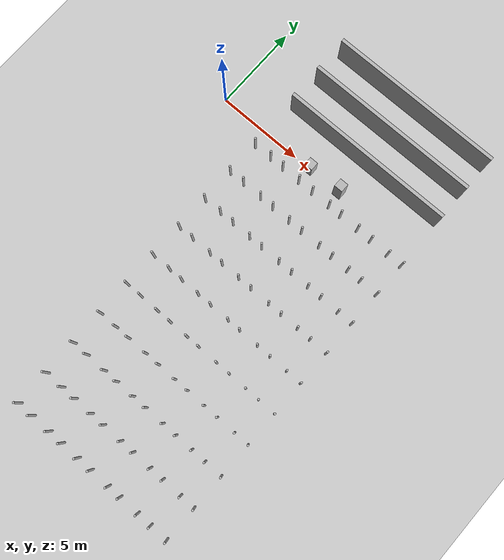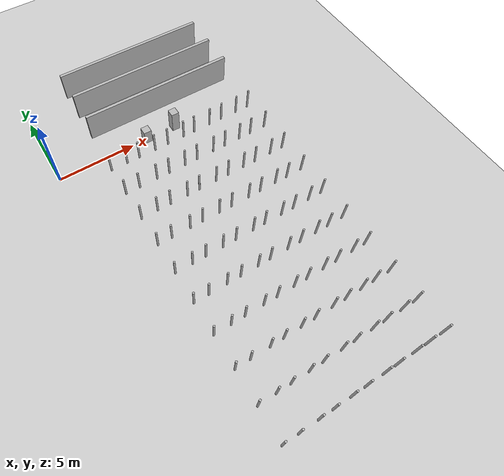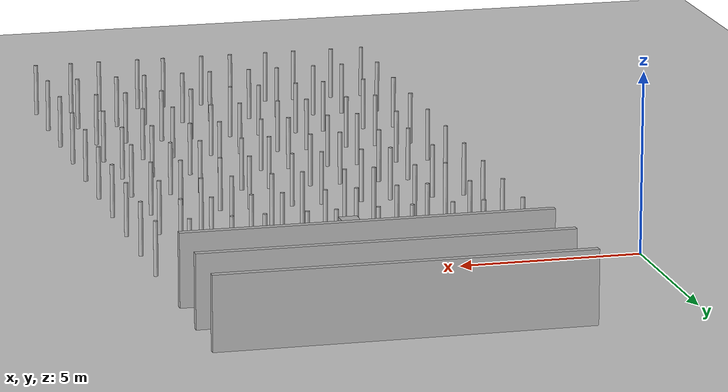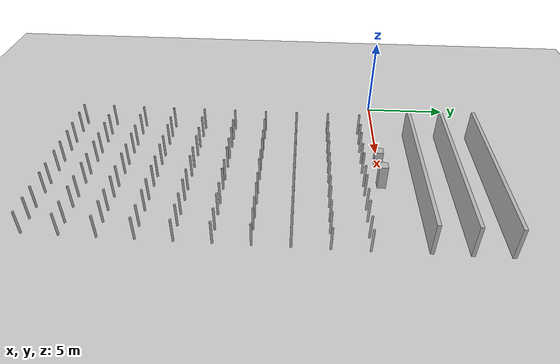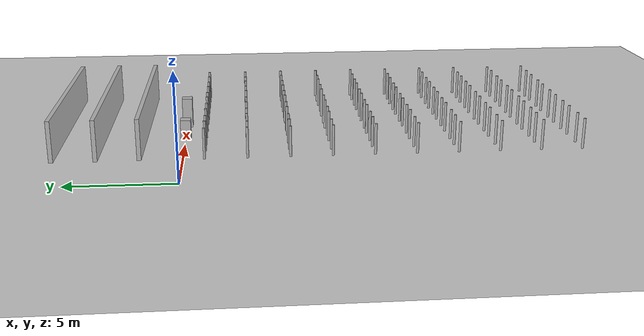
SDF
<?xml version="1.0" ?>
<sdf version="1.6">
  <world name="lidar_height_test">

    <!-- Gravity -->
    <gravity>0 0 -9.81</gravity>

    <!-- Light -->
    <include>
      <uri>model://sun</uri>
    </include>

    <!-- Floor -->
    <include>
      <uri>model://ground_plane</uri>
    </include>

    <model name="wall_row_1">
      <pose>8 2 1.0 0 0 1.5708</pose>
      <static>true</static>
      <link name="link">
        <collision name="collision">
          <geometry>
            <box>
              <size>0.2 10.0 2.0</size>
            </box>
          </geometry>
        </collision>
        <visual name="visual">
          <geometry>
            <box>
              <size>0.2 10.0 2.0</size>
            </box>
          </geometry>
        </visual>
      </link>
    </model>

    <model name="wall_row_2">
      <pose>8 4 1.0 0 0 1.5708</pose>
      <static>true</static>
      <link name="link">
        <collision name="collision">
          <geometry>
            <box>
              <size>0.2 10.0 2.0</size>
            </box>
          </geometry>
        </collision>
        <visual name="visual">
          <geometry>
            <box>
              <size>0.2 10.0 2.0</size>
            </box>
          </geometry>
        </visual>
      </link>
    </model>

    <model name="wall_row_3">
      <pose>8 6 1.0 0 0 1.5708</pose>
      <static>true</static>
      <link name="link">
        <collision name="collision">
          <geometry>
            <box>
              <size>0.2 10.0 2.0</size>
            </box>
          </geometry>
        </collision>
        <visual name="visual">
          <geometry>
            <box>
              <size>0.2 10.0 2.0</size>
            </box>
          </geometry>
        </visual>
      </link>
    </model>

    <!-- RANG 1: y = -1.0 -->
    <model name="vine_row_1">
      <static>true</static>
      <link name="link">
        <collision name="cyl_c3"><pose>3 -1.0 0.75 0 0 0</pose><geometry><cylinder><radius>0.06</radius><length>1.5</length></cylinder></geometry></collision>
        <visual name="cyl_v3"><pose>3 -1.0 0.75 0 0 0</pose><geometry><cylinder><radius>0.06</radius><length>1.5</length></cylinder></geometry></visual>

        <collision name="cyl_c4"><pose>4.08 -1.0 0.75 0 0 0</pose><geometry><cylinder><radius>0.06</radius><length>1.5</length></cylinder></geometry></collision>
        <visual name="cyl_v4"><pose>4.08 -1.0 0.75 0 0 0</pose><geometry><cylinder><radius>0.06</radius><length>1.5</length></cylinder></geometry></visual>

        <collision name="cyl_c5"><pose>4.93 -1.0 0.75 0 0 0</pose><geometry><cylinder><radius>0.06</radius><length>1.5</length></cylinder></geometry></collision>
        <visual name="cyl_v5"><pose>4.93 -1.0 0.75 0 0 0</pose><geometry><cylinder><radius>0.06</radius><length>1.5</length></cylinder></geometry></visual>

        <collision name="cyl_c6"><pose>6.05 -1.0 0.75 0 0 0</pose><geometry><cylinder><radius>0.06</radius><length>1.5</length></cylinder></geometry></collision>
        <visual name="cyl_v6"><pose>6.05 -1.0 0.75 0 0 0</pose><geometry><cylinder><radius>0.06</radius><length>1.5</length></cylinder></geometry></visual>

        <collision name="cyl_c7"><pose>6.97 -1.0 0.75 0 0 0</pose><geometry><cylinder><radius>0.06</radius><length>1.5</length></cylinder></geometry></collision>
        <visual name="cyl_v7"><pose>6.97 -1.0 0.75 0 0 0</pose><geometry><cylinder><radius>0.06</radius><length>1.5</length></cylinder></geometry></visual>

        <collision name="cyl_c8"><pose>8.12 -1.0 0.75 0 0 0</pose><geometry><cylinder><radius>0.06</radius><length>1.5</length></cylinder></geometry></collision>
        <visual name="cyl_v8"><pose>8.12 -1.0 0.75 0 0 0</pose><geometry><cylinder><radius>0.06</radius><length>1.5</length></cylinder></geometry></visual>

        <collision name="cyl_c9"><pose>8.91 -1.0 0.75 0 0 0</pose><geometry><cylinder><radius>0.06</radius><length>1.5</length></cylinder></geometry></collision>
        <visual name="cyl_v9"><pose>8.91 -1.0 0.75 0 0 0</pose><geometry><cylinder><radius>0.06</radius><length>1.5</length></cylinder></geometry></visual>

        <collision name="cyl_c10"><pose>10.06 -1.0 0.75 0 0 0</pose><geometry><cylinder><radius>0.06</radius><length>1.5</length></cylinder></geometry></collision>
        <visual name="cyl_v10"><pose>10.06 -1.0 0.75 0 0 0</pose><geometry><cylinder><radius>0.06</radius><length>1.5</length></cylinder></geometry></visual>

        <collision name="cyl_c11"><pose>10.95 -1.0 0.75 0 0 0</pose><geometry><cylinder><radius>0.06</radius><length>1.5</length></cylinder></geometry></collision>
        <visual name="cyl_v11"><pose>10.95 -1.0 0.75 0 0 0</pose><geometry><cylinder><radius>0.06</radius><length>1.5</length></cylinder></geometry></visual>

        <collision name="cyl_c12"><pose>12.09 -1.0 0.75 0 0 0</pose><geometry><cylinder><radius>0.06</radius><length>1.5</length></cylinder></geometry></collision>
        <visual name="cyl_v12"><pose>12.09 -1.0 0.75 0 0 0</pose><geometry><cylinder><radius>0.06</radius><length>1.5</length></cylinder></geometry></visual>

        <collision name="cyl_c13"><pose>13 -1.0 0.75 0 0 0</pose><geometry><cylinder><radius>0.06</radius><length>1.5</length></cylinder></geometry></collision>
        <visual name="cyl_v13"><pose>13 -1.0 0.75 0 0 0</pose><geometry><cylinder><radius>0.06</radius><length>1.5</length></cylinder></geometry></visual>
      </link>
    </model>

    <!-- RANG 2: y = -3.0 -->
    <model name="vine_row_2">
      <static>true</static>
      <link name="link">
        <collision name="cyl_c3"><pose>3 -3.0 0.75 0 0 0</pose><geometry><cylinder><radius>0.06</radius><length>1.5</length></cylinder></geometry></collision>
        <visual name="cyl_v3"><pose>3 -3.0 0.75 0 0 0</pose><geometry><cylinder><radius>0.06</radius><length>1.5</length></cylinder></geometry></visual>

        <collision name="cyl_c4"><pose>3.92 -3.0 0.75 0 0 0</pose><geometry><cylinder><radius>0.06</radius><length>1.5</length></cylinder></geometry></collision>
        <visual name="cyl_v4"><pose>3.92 -3.0 0.75 0 0 0</pose><geometry><cylinder><radius>0.06</radius><length>1.5</length></cylinder></geometry></visual>

        <collision name="cyl_c5"><pose>5.11 -3.0 0.75 0 0 0</pose><geometry><cylinder><radius>0.06</radius><length>1.5</length></cylinder></geometry></collision>
        <visual name="cyl_v5"><pose>5.11 -3.0 0.75 0 0 0</pose><geometry><cylinder><radius>0.06</radius><length>1.5</length></cylinder></geometry></visual>

        <collision name="cyl_c6"><pose>5.96 -3.0 0.75 0 0 0</pose><geometry><cylinder><radius>0.06</radius><length>1.5</length></cylinder></geometry></collision>
        <visual name="cyl_v6"><pose>5.96 -3.0 0.75 0 0 0</pose><geometry><cylinder><radius>0.06</radius><length>1.5</length></cylinder></geometry></visual>

        <collision name="cyl_c7"><pose>7.08 -3.0 0.75 0 0 0</pose><geometry><cylinder><radius>0.06</radius><length>1.5</length></cylinder></geometry></collision>
        <visual name="cyl_v7"><pose>7.08 -3.0 0.75 0 0 0</pose><geometry><cylinder><radius>0.06</radius><length>1.5</length></cylinder></geometry></visual>

        <collision name="cyl_c8"><pose>7.94 -3.0 0.75 0 0 0</pose><geometry><cylinder><radius>0.06</radius><length>1.5</length></cylinder></geometry></collision>
        <visual name="cyl_v8"><pose>7.94 -3.0 0.75 0 0 0</pose><geometry><cylinder><radius>0.06</radius><length>1.5</length></cylinder></geometry></visual>

        <collision name="cyl_c9"><pose>9.13 -3.0 0.75 0 0 0</pose><geometry><cylinder><radius>0.06</radius><length>1.5</length></cylinder></geometry></collision>
        <visual name="cyl_v9"><pose>9.13 -3.0 0.75 0 0 0</pose><geometry><cylinder><radius>0.06</radius><length>1.5</length></cylinder></geometry></visual>

        <collision name="cyl_c10"><pose>9.98 -3.0 0.75 0 0 0</pose><geometry><cylinder><radius>0.06</radius><length>1.5</length></cylinder></geometry></collision>
        <visual name="cyl_v10"><pose>9.98 -3.0 0.75 0 0 0</pose><geometry><cylinder><radius>0.06</radius><length>1.5</length></cylinder></geometry></visual>

        <collision name="cyl_c11"><pose>11.07 -3.0 0.75 0 0 0</pose><geometry><cylinder><radius>0.06</radius><length>1.5</length></cylinder></geometry></collision>
        <visual name="cyl_v11"><pose>11.07 -3.0 0.75 0 0 0</pose><geometry><cylinder><radius>0.06</radius><length>1.5</length></cylinder></geometry></visual>

        <collision name="cyl_c12"><pose>11.91 -3.0 0.75 0 0 0</pose><geometry><cylinder><radius>0.06</radius><length>1.5</length></cylinder></geometry></collision>
        <visual name="cyl_v12"><pose>11.91 -3.0 0.75 0 0 0</pose><geometry><cylinder><radius>0.06</radius><length>1.5</length></cylinder></geometry></visual>

        <collision name="cyl_c13"><pose>13 -3.0 0.75 0 0 0</pose><geometry><cylinder><radius>0.06</radius><length>1.5</length></cylinder></geometry></collision>
        <visual name="cyl_v13"><pose>13 -3.0 0.75 0 0 0</pose><geometry><cylinder><radius>0.06</radius><length>1.5</length></cylinder></geometry></visual>
      </link>
    </model>

    <!-- RANG 3: y = -5.0 -->
    <model name="vine_row_3">
      <static>true</static>
      <link name="link">
        <collision name="cyl_c3"><pose>3 -5.0 0.75 0 0 0</pose><geometry><cylinder><radius>0.06</radius><length>1.5</length></cylinder></geometry></collision>
        <visual name="cyl_v3"><pose>3 -5.0 0.75 0 0 0</pose><geometry><cylinder><radius>0.06</radius><length>1.5</length></cylinder></geometry></visual>

        <collision name="cyl_c4"><pose>4.07 -5.0 0.75 0 0 0</pose><geometry><cylinder><radius>0.06</radius><length>1.5</length></cylinder></geometry></collision>
        <visual name="cyl_v4"><pose>4.07 -5.0 0.75 0 0 0</pose><geometry><cylinder><radius>0.06</radius><length>1.5</length></cylinder></geometry></visual>

        <collision name="cyl_c5"><pose>4.94 -5.0 0.75 0 0 0</pose><geometry><cylinder><radius>0.06</radius><length>1.5</length></cylinder></geometry></collision>
        <visual name="cyl_v5"><pose>4.94 -5.0 0.75 0 0 0</pose><geometry><cylinder><radius>0.06</radius><length>1.5</length></cylinder></geometry></visual>

        <collision name="cyl_c6"><pose>6.10 -5.0 0.75 0 0 0</pose><geometry><cylinder><radius>0.06</radius><length>1.5</length></cylinder></geometry></collision>
        <visual name="cyl_v6"><pose>6.10 -5.0 0.75 0 0 0</pose><geometry><cylinder><radius>0.06</radius><length>1.5</length></cylinder></geometry></visual>

        <collision name="cyl_c7"><pose>6.92 -5.0 0.75 0 0 0</pose><geometry><cylinder><radius>0.06</radius><length>1.5</length></cylinder></geometry></collision>
        <visual name="cyl_v7"><pose>6.92 -5.0 0.75 0 0 0</pose><geometry><cylinder><radius>0.06</radius><length>1.5</length></cylinder></geometry></visual>

        <collision name="cyl_c8"><pose>8.11 -5.0 0.75 0 0 0</pose><geometry><cylinder><radius>0.06</radius><length>1.5</length></cylinder></geometry></collision>
        <visual name="cyl_v8"><pose>8.11 -5.0 0.75 0 0 0</pose><geometry><cylinder><radius>0.06</radius><length>1.5</length></cylinder></geometry></visual>

        <collision name="cyl_c9"><pose>8.96 -5.0 0.75 0 0 0</pose><geometry><cylinder><radius>0.06</radius><length>1.5</length></cylinder></geometry></collision>
        <visual name="cyl_v9"><pose>8.96 -5.0 0.75 0 0 0</pose><geometry><cylinder><radius>0.06</radius><length>1.5</length></cylinder></geometry></visual>

        <collision name="cyl_c10"><pose>10.08 -5.0 0.75 0 0 0</pose><geometry><cylinder><radius>0.06</radius><length>1.5</length></cylinder></geometry></collision>
        <visual name="cyl_v10"><pose>10.08 -5.0 0.75 0 0 0</pose><geometry><cylinder><radius>0.06</radius><length>1.5</length></cylinder></geometry></visual>

        <collision name="cyl_c11"><pose>10.93 -5.0 0.75 0 0 0</pose><geometry><cylinder><radius>0.06</radius><length>1.5</length></cylinder></geometry></collision>
        <visual name="cyl_v11"><pose>10.93 -5.0 0.75 0 0 0</pose><geometry><cylinder><radius>0.06</radius><length>1.5</length></cylinder></geometry></visual>

        <collision name="cyl_c12"><pose>12.09 -5.0 0.75 0 0 0</pose><geometry><cylinder><radius>0.06</radius><length>1.5</length></cylinder></geometry></collision>
        <visual name="cyl_v12"><pose>12.09 -5.0 0.75 0 0 0</pose><geometry><cylinder><radius>0.06</radius><length>1.5</length></cylinder></geometry></visual>

        <collision name="cyl_c13"><pose>13 -5.0 0.75 0 0 0</pose><geometry><cylinder><radius>0.06</radius><length>1.5</length></cylinder></geometry></collision>
        <visual name="cyl_v13"><pose>13 -5.0 0.75 0 0 0</pose><geometry><cylinder><radius>0.06</radius><length>1.5</length></cylinder></geometry></visual>
      </link>
    </model>

    <!-- RANG 4: y = -7.0 -->
    <model name="vine_row_4">
      <static>true</static>
      <link name="link">
        <collision name="cyl_c3"><pose>3 -7.0 0.75 0 0 0</pose><geometry><cylinder><radius>0.06</radius><length>1.5</length></cylinder></geometry></collision>
        <visual name="cyl_v3"><pose>3 -7.0 0.75 0 0 0</pose><geometry><cylinder><radius>0.06</radius><length>1.5</length></cylinder></geometry></visual>

        <collision name="cyl_c4"><pose>3.91 -7.0 0.75 0 0 0</pose><geometry><cylinder><radius>0.06</radius><length>1.5</length></cylinder></geometry></collision>
        <visual name="cyl_v4"><pose>3.91 -7.0 0.75 0 0 0</pose><geometry><cylinder><radius>0.06</radius><length>1.5</length></cylinder></geometry></visual>

        <collision name="cyl_c5"><pose>5.12 -7.0 0.75 0 0 0</pose><geometry><cylinder><radius>0.06</radius><length>1.5</length></cylinder></geometry></collision>
        <visual name="cyl_v5"><pose>5.12 -7.0 0.75 0 0 0</pose><geometry><cylinder><radius>0.06</radius><length>1.5</length></cylinder></geometry></visual>

        <collision name="cyl_c6"><pose>5.95 -7.0 0.75 0 0 0</pose><geometry><cylinder><radius>0.06</radius><length>1.5</length></cylinder></geometry></collision>
        <visual name="cyl_v6"><pose>5.95 -7.0 0.75 0 0 0</pose><geometry><cylinder><radius>0.06</radius><length>1.5</length></cylinder></geometry></visual>

        <collision name="cyl_c7"><pose>7.09 -7.0 0.75 0 0 0</pose><geometry><cylinder><radius>0.06</radius><length>1.5</length></cylinder></geometry></collision>
        <visual name="cyl_v7"><pose>7.09 -7.0 0.75 0 0 0</pose><geometry><cylinder><radius>0.06</radius><length>1.5</length></cylinder></geometry></visual>

        <collision name="cyl_c8"><pose>7.93 -7.0 0.75 0 0 0</pose><geometry><cylinder><radius>0.06</radius><length>1.5</length></cylinder></geometry></collision>
        <visual name="cyl_v8"><pose>7.93 -7.0 0.75 0 0 0</pose><geometry><cylinder><radius>0.06</radius><length>1.5</length></cylinder></geometry></visual>

        <collision name="cyl_c9"><pose>9.14 -7.0 0.75 0 0 0</pose><geometry><cylinder><radius>0.06</radius><length>1.5</length></cylinder></geometry></collision>
        <visual name="cyl_v9"><pose>9.14 -7.0 0.75 0 0 0</pose><geometry><cylinder><radius>0.06</radius><length>1.5</length></cylinder></geometry></visual>

        <collision name="cyl_c10"><pose>9.97 -7.0 0.75 0 0 0</pose><geometry><cylinder><radius>0.06</radius><length>1.5</length></cylinder></geometry></collision>
        <visual name="cyl_v10"><pose>9.97 -7.0 0.75 0 0 0</pose><geometry><cylinder><radius>0.06</radius><length>1.5</length></cylinder></geometry></visual>

        <collision name="cyl_c11"><pose>11.08 -7.0 0.75 0 0 0</pose><geometry><cylinder><radius>0.06</radius><length>1.5</length></cylinder></geometry></collision>
        <visual name="cyl_v11"><pose>11.08 -7.0 0.75 0 0 0</pose><geometry><cylinder><radius>0.06</radius><length>1.5</length></cylinder></geometry></visual>

        <collision name="cyl_c12"><pose>11.92 -7.0 0.75 0 0 0</pose><geometry><cylinder><radius>0.06</radius><length>1.5</length></cylinder></geometry></collision>
        <visual name="cyl_v12"><pose>11.92 -7.0 0.75 0 0 0</pose><geometry><cylinder><radius>0.06</radius><length>1.5</length></cylinder></geometry></visual>

        <collision name="cyl_c13"><pose>13 -7.0 0.75 0 0 0</pose><geometry><cylinder><radius>0.06</radius><length>1.5</length></cylinder></geometry></collision>
        <visual name="cyl_v13"><pose>13 -7.0 0.75 0 0 0</pose><geometry><cylinder><radius>0.06</radius><length>1.5</length></cylinder></geometry></visual>
      </link>
    </model>

    <!-- RANG 5: y = -9.0 -->
    <model name="vine_row_5">
      <static>true</static>
      <link name="link">
        <collision name="cyl_c3"><pose>3 -9.0 0.75 0 0 0</pose><geometry><cylinder><radius>0.06</radius><length>1.5</length></cylinder></geometry></collision>
        <visual name="cyl_v3"><pose>3 -9.0 0.75 0 0 0</pose><geometry><cylinder><radius>0.06</radius><length>1.5</length></cylinder></geometry></visual>

        <collision name="cyl_c4"><pose>4.10 -9.0 0.75 0 0 0</pose><geometry><cylinder><radius>0.06</radius><length>1.5</length></cylinder></geometry></collision>
        <visual name="cyl_v4"><pose>4.10 -9.0 0.75 0 0 0</pose><geometry><cylinder><radius>0.06</radius><length>1.5</length></cylinder></geometry></visual>

        <collision name="cyl_c5"><pose>4.95 -9.0 0.75 0 0 0</pose><geometry><cylinder><radius>0.06</radius><length>1.5</length></cylinder></geometry></collision>
        <visual name="cyl_v5"><pose>4.95 -9.0 0.75 0 0 0</pose><geometry><cylinder><radius>0.06</radius><length>1.5</length></cylinder></geometry></visual>

        <collision name="cyl_c6"><pose>6.08 -9.0 0.75 0 0 0</pose><geometry><cylinder><radius>0.06</radius><length>1.5</length></cylinder></geometry></collision>
        <visual name="cyl_v6"><pose>6.08 -9.0 0.75 0 0 0</pose><geometry><cylinder><radius>0.06</radius><length>1.5</length></cylinder></geometry></visual>

        <collision name="cyl_c7"><pose>6.94 -9.0 0.75 0 0 0</pose><geometry><cylinder><radius>0.06</radius><length>1.5</length></cylinder></geometry></collision>
        <visual name="cyl_v7"><pose>6.94 -9.0 0.75 0 0 0</pose><geometry><cylinder><radius>0.06</radius><length>1.5</length></cylinder></geometry></visual>

        <collision name="cyl_c8"><pose>8.13 -9.0 0.75 0 0 0</pose><geometry><cylinder><radius>0.06</radius><length>1.5</length></cylinder></geometry></collision>
        <visual name="cyl_v8"><pose>8.13 -9.0 0.75 0 0 0</pose><geometry><cylinder><radius>0.06</radius><length>1.5</length></cylinder></geometry></visual>

        <collision name="cyl_c9"><pose>8.92 -9.0 0.75 0 0 0</pose><geometry><cylinder><radius>0.06</radius><length>1.5</length></cylinder></geometry></collision>
        <visual name="cyl_v9"><pose>8.92 -9.0 0.75 0 0 0</pose><geometry><cylinder><radius>0.06</radius><length>1.5</length></cylinder></geometry></visual>

        <collision name="cyl_c10"><pose>10.11 -9.0 0.75 0 0 0</pose><geometry><cylinder><radius>0.06</radius><length>1.5</length></cylinder></geometry></collision>
        <visual name="cyl_v10"><pose>10.11 -9.0 0.75 0 0 0</pose><geometry><cylinder><radius>0.06</radius><length>1.5</length></cylinder></geometry></visual>

        <collision name="cyl_c11"><pose>10.96 -9.0 0.75 0 0 0</pose><geometry><cylinder><radius>0.06</radius><length>1.5</length></cylinder></geometry></collision>
        <visual name="cyl_v11"><pose>10.96 -9.0 0.75 0 0 0</pose><geometry><cylinder><radius>0.06</radius><length>1.5</length></cylinder></geometry></visual>

        <collision name="cyl_c12"><pose>12.07 -9.0 0.75 0 0 0</pose><geometry><cylinder><radius>0.06</radius><length>1.5</length></cylinder></geometry></collision>
        <visual name="cyl_v12"><pose>12.07 -9.0 0.75 0 0 0</pose><geometry><cylinder><radius>0.06</radius><length>1.5</length></cylinder></geometry></visual>

        <collision name="cyl_c13"><pose>13 -9.0 0.75 0 0 0</pose><geometry><cylinder><radius>0.06</radius><length>1.5</length></cylinder></geometry></collision>
        <visual name="cyl_v13"><pose>13 -9.0 0.75 0 0 0</pose><geometry><cylinder><radius>0.06</radius><length>1.5</length></cylinder></geometry></visual>
      </link>
    </model>

    <!-- RANG 6: y = -11.0 -->
    <model name="vine_row_6">
      <static>true</static>
      <link name="link">
        <collision name="cyl_c3"><pose>3 -11.0 0.75 0 0 0</pose><geometry><cylinder><radius>0.06</radius><length>1.5</length></cylinder></geometry></collision>
        <visual name="cyl_v3"><pose>3 -11.0 0.75 0 0 0</pose><geometry><cylinder><radius>0.06</radius><length>1.5</length></cylinder></geometry></visual>

        <collision name="cyl_c4"><pose>3.93 -11.0 0.75 0 0 0</pose><geometry><cylinder><radius>0.06</radius><length>1.5</length></cylinder></geometry></collision>
        <visual name="cyl_v4"><pose>3.93 -11.0 0.75 0 0 0</pose><geometry><cylinder><radius>0.06</radius><length>1.5</length></cylinder></geometry></visual>

        <collision name="cyl_c5"><pose>5.09 -11.0 0.75 0 0 0</pose><geometry><cylinder><radius>0.06</radius><length>1.5</length></cylinder></geometry></collision>
        <visual name="cyl_v5"><pose>5.09 -11.0 0.75 0 0 0</pose><geometry><cylinder><radius>0.06</radius><length>1.5</length></cylinder></geometry></visual>

        <collision name="cyl_c6"><pose>5.96 -11.0 0.75 0 0 0</pose><geometry><cylinder><radius>0.06</radius><length>1.5</length></cylinder></geometry></collision>
        <visual name="cyl_v6"><pose>5.96 -11.0 0.75 0 0 0</pose><geometry><cylinder><radius>0.06</radius><length>1.5</length></cylinder></geometry></visual>

        <collision name="cyl_c7"><pose>7.11 -11.0 0.75 0 0 0</pose><geometry><cylinder><radius>0.06</radius><length>1.5</length></cylinder></geometry></collision>
        <visual name="cyl_v7"><pose>7.11 -11.0 0.75 0 0 0</pose><geometry><cylinder><radius>0.06</radius><length>1.5</length></cylinder></geometry></visual>

        <collision name="cyl_c8"><pose>7.91 -11.0 0.75 0 0 0</pose><geometry><cylinder><radius>0.06</radius><length>1.5</length></cylinder></geometry></collision>
        <visual name="cyl_v8"><pose>7.91 -11.0 0.75 0 0 0</pose><geometry><cylinder><radius>0.06</radius><length>1.5</length></cylinder></geometry></visual>

        <collision name="cyl_c9"><pose>9.12 -11.0 0.75 0 0 0</pose><geometry><cylinder><radius>0.06</radius><length>1.5</length></cylinder></geometry></collision>
        <visual name="cyl_v9"><pose>9.12 -11.0 0.75 0 0 0</pose><geometry><cylinder><radius>0.06</radius><length>1.5</length></cylinder></geometry></visual>

        <collision name="cyl_c10"><pose>9.98 -11.0 0.75 0 0 0</pose><geometry><cylinder><radius>0.06</radius><length>1.5</length></cylinder></geometry></collision>
        <visual name="cyl_v10"><pose>9.98 -11.0 0.75 0 0 0</pose><geometry><cylinder><radius>0.06</radius><length>1.5</length></cylinder></geometry></visual>

        <collision name="cyl_c11"><pose>11.08 -11.0 0.75 0 0 0</pose><geometry><cylinder><radius>0.06</radius><length>1.5</length></cylinder></geometry></collision>
        <visual name="cyl_v11"><pose>11.08 -11.0 0.75 0 0 0</pose><geometry><cylinder><radius>0.06</radius><length>1.5</length></cylinder></geometry></visual>

        <collision name="cyl_c12"><pose>11.94 -11.0 0.75 0 0 0</pose><geometry><cylinder><radius>0.06</radius><length>1.5</length></cylinder></geometry></collision>
        <visual name="cyl_v12"><pose>11.94 -11.0 0.75 0 0 0</pose><geometry><cylinder><radius>0.06</radius><length>1.5</length></cylinder></geometry></visual>

        <collision name="cyl_c13"><pose>13 -11.0 0.75 0 0 0</pose><geometry><cylinder><radius>0.06</radius><length>1.5</length></cylinder></geometry></collision>
        <visual name="cyl_v13"><pose>13 -11.0 0.75 0 0 0</pose><geometry><cylinder><radius>0.06</radius><length>1.5</length></cylinder></geometry></visual>
      </link>
    </model>

    <!-- RANG 7: y = -13.0 -->
    <model name="vine_row_7">
      <static>true</static>
      <link name="link">
        <collision name="cyl_c3"><pose>3 -13.0 0.75 0 0 0</pose><geometry><cylinder><radius>0.06</radius><length>1.5</length></cylinder></geometry></collision>
        <visual name="cyl_v3"><pose>3 -13.0 0.75 0 0 0</pose><geometry><cylinder><radius>0.06</radius><length>1.5</length></cylinder></geometry></visual>

        <collision name="cyl_c4"><pose>4.06 -13.0 0.75 0 0 0</pose><geometry><cylinder><radius>0.06</radius><length>1.5</length></cylinder></geometry></collision>
        <visual name="cyl_v4"><pose>4.06 -13.0 0.75 0 0 0</pose><geometry><cylinder><radius>0.06</radius><length>1.5</length></cylinder></geometry></visual>

        <collision name="cyl_c5"><pose>4.92 -13.0 0.75 0 0 0</pose><geometry><cylinder><radius>0.06</radius><length>1.5</length></cylinder></geometry></collision>
        <visual name="cyl_v5"><pose>4.92 -13.0 0.75 0 0 0</pose><geometry><cylinder><radius>0.06</radius><length>1.5</length></cylinder></geometry></visual>

        <collision name="cyl_c6"><pose>6.11 -13.0 0.75 0 0 0</pose><geometry><cylinder><radius>0.06</radius><length>1.5</length></cylinder></geometry></collision>
        <visual name="cyl_v6"><pose>6.11 -13.0 0.75 0 0 0</pose><geometry><cylinder><radius>0.06</radius><length>1.5</length></cylinder></geometry></visual>

        <collision name="cyl_c7"><pose>6.97 -13.0 0.75 0 0 0</pose><geometry><cylinder><radius>0.06</radius><length>1.5</length></cylinder></geometry></collision>
        <visual name="cyl_v7"><pose>6.97 -13.0 0.75 0 0 0</pose><geometry><cylinder><radius>0.06</radius><length>1.5</length></cylinder></geometry></visual>

        <collision name="cyl_c8"><pose>8.09 -13.0 0.75 0 0 0</pose><geometry><cylinder><radius>0.06</radius><length>1.5</length></cylinder></geometry></collision>
        <visual name="cyl_v8"><pose>8.09 -13.0 0.75 0 0 0</pose><geometry><cylinder><radius>0.06</radius><length>1.5</length></cylinder></geometry></visual>

        <collision name="cyl_c9"><pose>8.94 -13.0 0.75 0 0 0</pose><geometry><cylinder><radius>0.06</radius><length>1.5</length></cylinder></geometry></collision>
        <visual name="cyl_v9"><pose>8.94 -13.0 0.75 0 0 0</pose><geometry><cylinder><radius>0.06</radius><length>1.5</length></cylinder></geometry></visual>

        <collision name="cyl_c10"><pose>10.07 -13.0 0.75 0 0 0</pose><geometry><cylinder><radius>0.06</radius><length>1.5</length></cylinder></geometry></collision>
        <visual name="cyl_v10"><pose>10.07 -13.0 0.75 0 0 0</pose><geometry><cylinder><radius>0.06</radius><length>1.5</length></cylinder></geometry></visual>

        <collision name="cyl_c11"><pose>10.95 -13.0 0.75 0 0 0</pose><geometry><cylinder><radius>0.06</radius><length>1.5</length></cylinder></geometry></collision>
        <visual name="cyl_v11"><pose>10.95 -13.0 0.75 0 0 0</pose><geometry><cylinder><radius>0.06</radius><length>1.5</length></cylinder></geometry></visual>

        <collision name="cyl_c12"><pose>12.10 -13.0 0.75 0 0 0</pose><geometry><cylinder><radius>0.06</radius><length>1.5</length></cylinder></geometry></collision>
        <visual name="cyl_v12"><pose>12.10 -13.0 0.75 0 0 0</pose><geometry><cylinder><radius>0.06</radius><length>1.5</length></cylinder></geometry></visual>

        <collision name="cyl_c13"><pose>13 -13.0 0.75 0 0 0</pose><geometry><cylinder><radius>0.06</radius><length>1.5</length></cylinder></geometry></collision>
        <visual name="cyl_v13"><pose>13 -13.0 0.75 0 0 0</pose><geometry><cylinder><radius>0.06</radius><length>1.5</length></cylinder></geometry></visual>
      </link>
    </model>

    <!-- RANG 8: y = -15.0 -->
    <model name="vine_row_8">
      <static>true</static>
      <link name="link">
        <collision name="cyl_c3"><pose>3 -15.0 0.75 0 0 0</pose><geometry><cylinder><radius>0.06</radius><length>1.5</length></cylinder></geometry></collision>
        <visual name="cyl_v3"><pose>3 -15.0 0.75 0 0 0</pose><geometry><cylinder><radius>0.06</radius><length>1.5</length></cylinder></geometry></visual>

        <collision name="cyl_c4"><pose>3.92 -15.0 0.75 0 0 0</pose><geometry><cylinder><radius>0.06</radius><length>1.5</length></cylinder></geometry></collision>
        <visual name="cyl_v4"><pose>3.92 -15.0 0.75 0 0 0</pose><geometry><cylinder><radius>0.06</radius><length>1.5</length></cylinder></geometry></visual>

        <collision name="cyl_c5"><pose>5.13 -15.0 0.75 0 0 0</pose><geometry><cylinder><radius>0.06</radius><length>1.5</length></cylinder></geometry></collision>
        <visual name="cyl_v5"><pose>5.13 -15.0 0.75 0 0 0</pose><geometry><cylinder><radius>0.06</radius><length>1.5</length></cylinder></geometry></visual>

        <collision name="cyl_c6"><pose>5.97 -15.0 0.75 0 0 0</pose><geometry><cylinder><radius>0.06</radius><length>1.5</length></cylinder></geometry></collision>
        <visual name="cyl_v6"><pose>5.97 -15.0 0.75 0 0 0</pose><geometry><cylinder><radius>0.06</radius><length>1.5</length></cylinder></geometry></visual>

        <collision name="cyl_c7"><pose>7.08 -15.0 0.75 0 0 0</pose><geometry><cylinder><radius>0.06</radius><length>1.5</length></cylinder></geometry></collision>
        <visual name="cyl_v7"><pose>7.08 -15.0 0.75 0 0 0</pose><geometry><cylinder><radius>0.06</radius><length>1.5</length></cylinder></geometry></visual>

        <collision name="cyl_c8"><pose>7.94 -15.0 0.75 0 0 0</pose><geometry><cylinder><radius>0.06</radius><length>1.5</length></cylinder></geometry></collision>
        <visual name="cyl_v8"><pose>7.94 -15.0 0.75 0 0 0</pose><geometry><cylinder><radius>0.06</radius><length>1.5</length></cylinder></geometry></visual>

        <collision name="cyl_c9"><pose>9.11 -15.0 0.75 0 0 0</pose><geometry><cylinder><radius>0.06</radius><length>1.5</length></cylinder></geometry></collision>
        <visual name="cyl_v9"><pose>9.11 -15.0 0.75 0 0 0</pose><geometry><cylinder><radius>0.06</radius><length>1.5</length></cylinder></geometry></visual>

        <collision name="cyl_c10"><pose>9.99 -15.0 0.75 0 0 0</pose><geometry><cylinder><radius>0.06</radius><length>1.5</length></cylinder></geometry></collision>
        <visual name="cyl_v10"><pose>9.99 -15.0 0.75 0 0 0</pose><geometry><cylinder><radius>0.06</radius><length>1.5</length></cylinder></geometry></visual>

        <collision name="cyl_c11"><pose>11.06 -15.0 0.75 0 0 0</pose><geometry><cylinder><radius>0.06</radius><length>1.5</length></cylinder></geometry></collision>
        <visual name="cyl_v11"><pose>11.06 -15.0 0.75 0 0 0</pose><geometry><cylinder><radius>0.06</radius><length>1.5</length></cylinder></geometry></visual>

        <collision name="cyl_c12"><pose>11.93 -15.0 0.75 0 0 0</pose><geometry><cylinder><radius>0.06</radius><length>1.5</length></cylinder></geometry></collision>
        <visual name="cyl_v12"><pose>11.93 -15.0 0.75 0 0 0</pose><geometry><cylinder><radius>0.06</radius><length>1.5</length></cylinder></geometry></visual>

        <collision name="cyl_c13"><pose>13 -15.0 0.75 0 0 0</pose><geometry><cylinder><radius>0.06</radius><length>1.5</length></cylinder></geometry></collision>
        <visual name="cyl_v13"><pose>13 -15.0 0.75 0 0 0</pose><geometry><cylinder><radius>0.06</radius><length>1.5</length></cylinder></geometry></visual>
      </link>
    </model>

    <!-- RANG 9: y = -17.0 -->
    <model name="vine_row_9">
      <static>true</static>
      <link name="link">
        <collision name="cyl_c3"><pose>3 -17.0 0.75 0 0 0</pose><geometry><cylinder><radius>0.06</radius><length>1.5</length></cylinder></geometry></collision>
        <visual name="cyl_v3"><pose>3 -17.0 0.75 0 0 0</pose><geometry><cylinder><radius>0.06</radius><length>1.5</length></cylinder></geometry></visual>

        <collision name="cyl_c4"><pose>4.09 -17.0 0.75 0 0 0</pose><geometry><cylinder><radius>0.06</radius><length>1.5</length></cylinder></geometry></collision>
        <visual name="cyl_v4"><pose>4.09 -17.0 0.75 0 0 0</pose><geometry><cylinder><radius>0.06</radius><length>1.5</length></cylinder></geometry></visual>

        <collision name="cyl_c5"><pose>4.96 -17.0 0.75 0 0 0</pose><geometry><cylinder><radius>0.06</radius><length>1.5</length></cylinder></geometry></collision>
        <visual name="cyl_v5"><pose>4.96 -17.0 0.75 0 0 0</pose><geometry><cylinder><radius>0.06</radius><length>1.5</length></cylinder></geometry></visual>

        <collision name="cyl_c6"><pose>6.08 -17.0 0.75 0 0 0</pose><geometry><cylinder><radius>0.06</radius><length>1.5</length></cylinder></geometry></collision>
        <visual name="cyl_v6"><pose>6.08 -17.0 0.75 0 0 0</pose><geometry><cylinder><radius>0.06</radius><length>1.5</length></cylinder></geometry></visual>

        <collision name="cyl_c7"><pose>6.93 -17.0 0.75 0 0 0</pose><geometry><cylinder><radius>0.06</radius><length>1.5</length></cylinder></geometry></collision>
        <visual name="cyl_v7"><pose>6.93 -17.0 0.75 0 0 0</pose><geometry><cylinder><radius>0.06</radius><length>1.5</length></cylinder></geometry></visual>

        <collision name="cyl_c8"><pose>8.12 -17.0 0.75 0 0 0</pose><geometry><cylinder><radius>0.06</radius><length>1.5</length></cylinder></geometry></collision>
        <visual name="cyl_v8"><pose>8.12 -17.0 0.75 0 0 0</pose><geometry><cylinder><radius>0.06</radius><length>1.5</length></cylinder></geometry></visual>

        <collision name="cyl_c9"><pose>8.95 -17.0 0.75 0 0 0</pose><geometry><cylinder><radius>0.06</radius><length>1.5</length></cylinder></geometry></collision>
        <visual name="cyl_v9"><pose>8.95 -17.0 0.75 0 0 0</pose><geometry><cylinder><radius>0.06</radius><length>1.5</length></cylinder></geometry></visual>

        <collision name="cyl_c10"><pose>10.10 -17.0 0.75 0 0 0</pose><geometry><cylinder><radius>0.06</radius><length>1.5</length></cylinder></geometry></collision>
        <visual name="cyl_v10"><pose>10.10 -17.0 0.75 0 0 0</pose><geometry><cylinder><radius>0.06</radius><length>1.5</length></cylinder></geometry></visual>

        <collision name="cyl_c11"><pose>10.94 -17.0 0.75 0 0 0</pose><geometry><cylinder><radius>0.06</radius><length>1.5</length></cylinder></geometry></collision>
        <visual name="cyl_v11"><pose>10.94 -17.0 0.75 0 0 0</pose><geometry><cylinder><radius>0.06</radius><length>1.5</length></cylinder></geometry></visual>

        <collision name="cyl_c12"><pose>12.11 -17.0 0.75 0 0 0</pose><geometry><cylinder><radius>0.06</radius><length>1.5</length></cylinder></geometry></collision>
        <visual name="cyl_v12"><pose>12.11 -17.0 0.75 0 0 0</pose><geometry><cylinder><radius>0.06</radius><length>1.5</length></cylinder></geometry></visual>

        <collision name="cyl_c13"><pose>13 -17.0 0.75 0 0 0</pose><geometry><cylinder><radius>0.06</radius><length>1.5</length></cylinder></geometry></collision>
        <visual name="cyl_v13"><pose>13 -17.0 0.75 0 0 0</pose><geometry><cylinder><radius>0.06</radius><length>1.5</length></cylinder></geometry></visual>
      </link>
    </model>

    <!-- RANG 10: y = -19.0 -->
    <model name="vine_row_10">
      <static>true</static>
      <link name="link">
        <collision name="cyl_c3"><pose>3 -19.0 0.75 0 0 0</pose><geometry><cylinder><radius>0.06</radius><length>1.5</length></cylinder></geometry></collision>
        <visual name="cyl_v3"><pose>3 -19.0 0.75 0 0 0</pose><geometry><cylinder><radius>0.06</radius><length>1.5</length></cylinder></geometry></visual>

        <collision name="cyl_c4"><pose>3.94 -19.0 0.75 0 0 0</pose><geometry><cylinder><radius>0.06</radius><length>1.5</length></cylinder></geometry></collision>
        <visual name="cyl_v4"><pose>3.94 -19.0 0.75 0 0 0</pose><geometry><cylinder><radius>0.06</radius><length>1.5</length></cylinder></geometry></visual>

        <collision name="cyl_c5"><pose>5.11 -19.0 0.75 0 0 0</pose><geometry><cylinder><radius>0.06</radius><length>1.5</length></cylinder></geometry></collision>
        <visual name="cyl_v5"><pose>5.11 -19.0 0.75 0 0 0</pose><geometry><cylinder><radius>0.06</radius><length>1.5</length></cylinder></geometry></visual>

        <collision name="cyl_c6"><pose>5.98 -19.0 0.75 0 0 0</pose><geometry><cylinder><radius>0.06</radius><length>1.5</length></cylinder></geometry></collision>
        <visual name="cyl_v6"><pose>5.98 -19.0 0.75 0 0 0</pose><geometry><cylinder><radius>0.06</radius><length>1.5</length></cylinder></geometry></visual>

        <collision name="cyl_c7"><pose>7.07 -19.0 0.75 0 0 0</pose><geometry><cylinder><radius>0.06</radius><length>1.5</length></cylinder></geometry></collision>
        <visual name="cyl_v7"><pose>7.07 -19.0 0.75 0 0 0</pose><geometry><cylinder><radius>0.06</radius><length>1.5</length></cylinder></geometry></visual>

        <collision name="cyl_c8"><pose>7.96 -19.0 0.75 0 0 0</pose><geometry><cylinder><radius>0.06</radius><length>1.5</length></cylinder></geometry></collision>
        <visual name="cyl_v8"><pose>7.96 -19.0 0.75 0 0 0</pose><geometry><cylinder><radius>0.06</radius><length>1.5</length></cylinder></geometry></visual>

        <collision name="cyl_c9"><pose>9.13 -19.0 0.75 0 0 0</pose><geometry><cylinder><radius>0.06</radius><length>1.5</length></cylinder></geometry></collision>
        <visual name="cyl_v9"><pose>9.13 -19.0 0.75 0 0 0</pose><geometry><cylinder><radius>0.06</radius><length>1.5</length></cylinder></geometry></visual>

        <collision name="cyl_c10"><pose>9.92 -19.0 0.75 0 0 0</pose><geometry><cylinder><radius>0.06</radius><length>1.5</length></cylinder></geometry></collision>
        <visual name="cyl_v10"><pose>9.92 -19.0 0.75 0 0 0</pose><geometry><cylinder><radius>0.06</radius><length>1.5</length></cylinder></geometry></visual>

        <collision name="cyl_c11"><pose>11.09 -19.0 0.75 0 0 0</pose><geometry><cylinder><radius>0.06</radius><length>1.5</length></cylinder></geometry></collision>
        <visual name="cyl_v11"><pose>11.09 -19.0 0.75 0 0 0</pose><geometry><cylinder><radius>0.06</radius><length>1.5</length></cylinder></geometry></visual>

        <collision name="cyl_c12"><pose>11.95 -19.0 0.75 0 0 0</pose><geometry><cylinder><radius>0.06</radius><length>1.5</length></cylinder></geometry></collision>
        <visual name="cyl_v12"><pose>11.95 -19.0 0.75 0 0 0</pose><geometry><cylinder><radius>0.06</radius><length>1.5</length></cylinder></geometry></visual>

        <collision name="cyl_c13"><pose>13 -19.0 0.75 0 0 0</pose><geometry><cylinder><radius>0.06</radius><length>1.5</length></cylinder></geometry></collision>
        <visual name="cyl_v13"><pose>13 -19.0 0.75 0 0 0</pose><geometry><cylinder><radius>0.06</radius><length>1.5</length></cylinder></geometry></visual>
      </link>
    </model>

    <!-- =========================================================
         Obstacles (cubes)
         ========================================================= -->

    <model name="cube_10m">
      <pose>6 0 0.5 0 0 0</pose>
      <static>true</static>
      <link name="link">
        <visual name="visual">
          <geometry>
            <box>
              <size>0.5 0.5 1.0</size>
            </box>
          </geometry>
        </visual>
        <collision name="collision">
          <geometry>
            <box>
              <size>0.5 0.5 1.0</size>
            </box>
          </geometry>
        </collision>
      </link>
    </model>

    <model name="cube_15m">
      <pose>8 0 0.75 0 0 0</pose>
      <static>true</static>
      <link name="link">
        <visual name="visual">
          <geometry>
            <box>
              <size>0.5 0.5 1.5</size>
            </box>
          </geometry>
        </visual>
        <collision name="collision">
          <geometry>
            <box>
              <size>0.5 0.5 1.5</size>
            </box>
          </geometry>
        </collision>
      </link>
    </model>

  </world>
</sdf>
